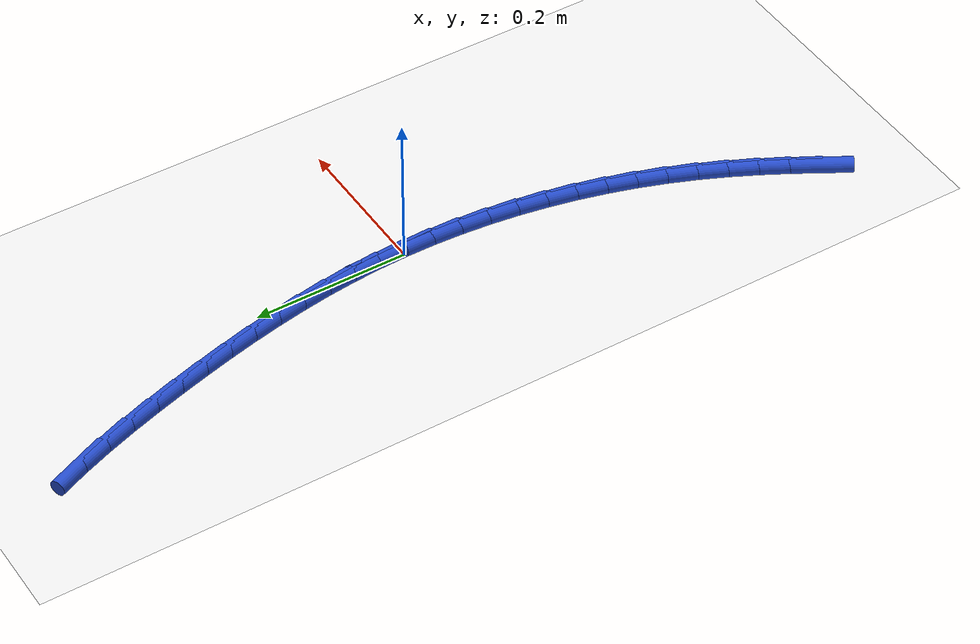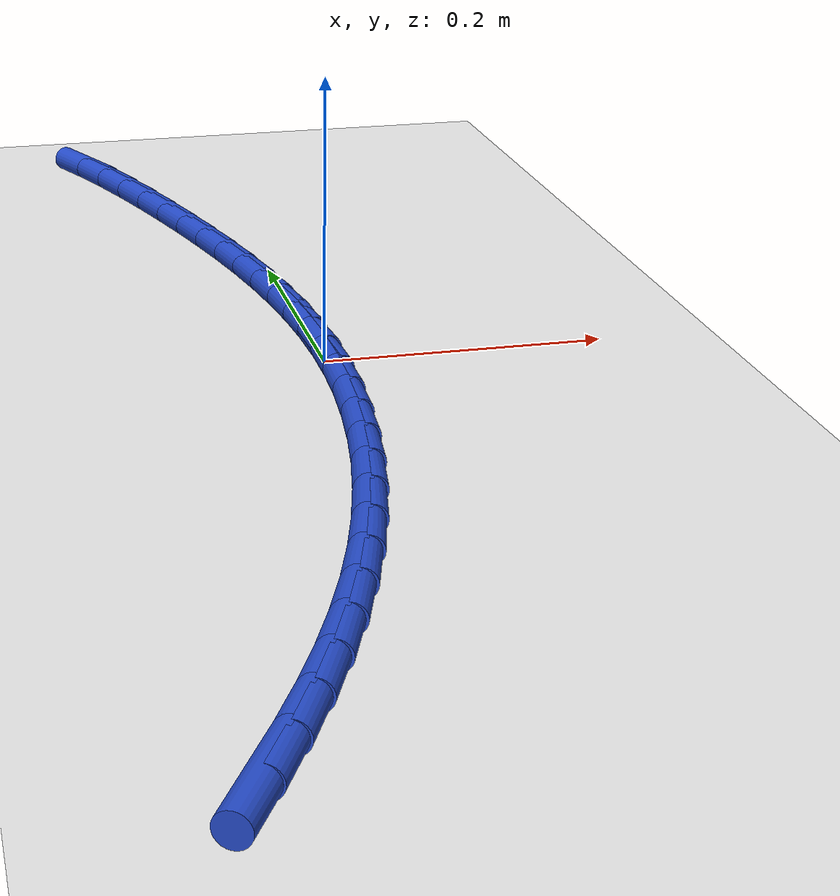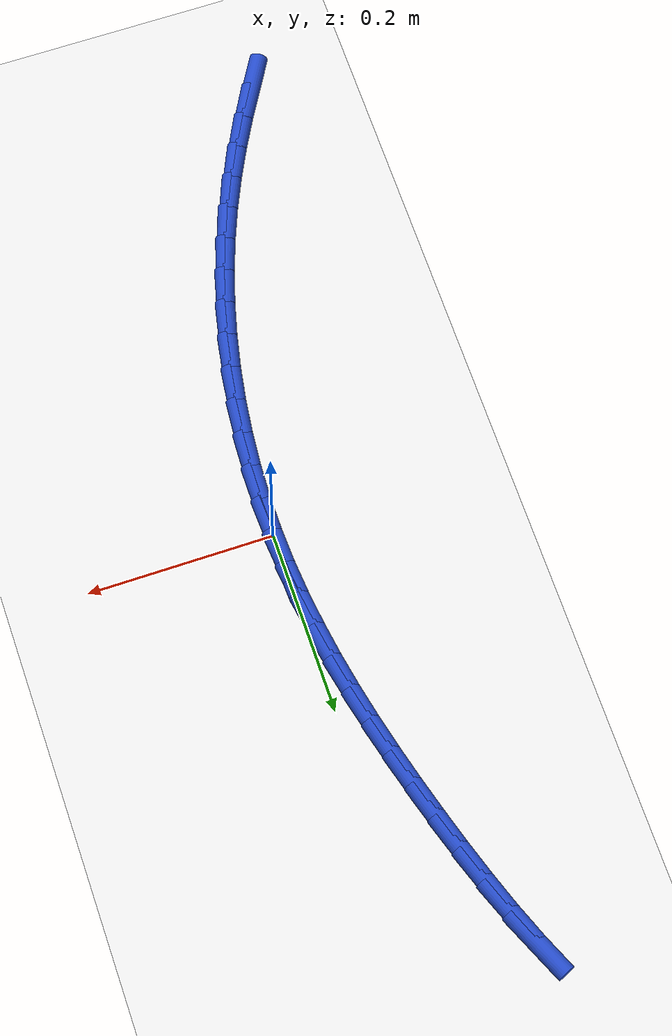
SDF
<sdf version="1.6">
 <world name="default">
  <model name="ground_plane">
   <static>1</static>
   <link name="link">
    <collision name="collision">
     <geometry><plane><normal>0 0 1</normal><size>100 100</size></plane></geometry>
     <surface><friction><ode><mu>100</mu><mu2>50</mu2></ode></friction></surface>
    </collision>
    <visual name="visual">
     <cast_shadows>0</cast_shadows>
     <geometry><plane><normal>0 0 1</normal><size>100 100</size></plane></geometry>
     <material>
      <script><uri>file://media/materials/scripts/gazebo.material</uri><name>Gazebo/WhiteGlow</name></script>
     </material>
    </visual>
   </link>
  </model>
  <model name="line">
   <link name="link_0">
    <pose>-2.0816681711721685e-17 -1.0408340855860843e-16 0.01 0 1.57 -1.5327637463056027</pose>
    <collision name="collision">
     <geometry><cylinder><radius>0.01</radius><length>0.08</length></cylinder></geometry>
    </collision>
    <visual name="visual">
     <material>
      <script><name>Gazebo/Blue</name><uri>file://media/materials/scripts/gazebo.material</uri></script>
     </material>
     <geometry><cylinder><radius>0.01</radius><length>0.08</length></cylinder></geometry>
    </visual>
   </link>
   <link name="link_1">
    <pose>-0.001434148811461781 0.037690244482160684 0.01 0 1.57 -1.4921081020625393</pose>
    <collision name="collision">
     <geometry><cylinder><radius>0.01</radius><length>0.08</length></cylinder></geometry>
    </collision>
    <visual name="visual">
     <material>
      <script><name>Gazebo/Blue</name><uri>file://media/materials/scripts/gazebo.material</uri></script>
     </material>
     <geometry><cylinder><radius>0.01</radius><length>0.08</length></cylinder></geometry>
    </visual>
   </link>
   <link name="link_2">
    <pose>-0.004389834646771935 0.07517467053193923 0.01 0 1.57 -1.4542497640319472</pose>
    <collision name="collision">
     <geometry><cylinder><radius>0.01</radius><length>0.08</length></cylinder></geometry>
    </collision>
    <visual name="visual">
     <material>
      <script><name>Gazebo/Blue</name><uri>file://media/materials/scripts/gazebo.material</uri></script>
     </material>
     <geometry><cylinder><radius>0.01</radius><length>0.08</length></cylinder></geometry>
    </visual>
   </link>
   <link name="link_3">
    <pose>-0.008761367249101027 0.11251358094297098 0.01 0 1.57 -1.4194491700910916</pose>
    <collision name="collision">
     <geometry><cylinder><radius>0.01</radius><length>0.08</length></cylinder></geometry>
    </collision>
    <visual name="visual">
     <material>
      <script><name>Gazebo/Blue</name><uri>file://media/materials/scripts/gazebo.material</uri></script>
     </material>
     <geometry><cylinder><radius>0.01</radius><length>0.08</length></cylinder></geometry>
    </visual>
   </link>
   <link name="link_4">
    <pose>-0.014443056361619648 0.14976727850889157 0.01 0 1.57 -1.3878949564412437</pose>
    <collision name="collision">
     <geometry><cylinder><radius>0.01</radius><length>0.08</length></cylinder></geometry>
    </collision>
    <visual name="visual">
     <material>
      <script><name>Gazebo/Blue</name><uri>file://media/materials/scripts/gazebo.material</uri></script>
     </material>
     <geometry><cylinder><radius>0.01</radius><length>0.08</length></cylinder></geometry>
    </visual>
   </link>
   <link name="link_5">
    <pose>-0.021329211727498333 0.18699606602333635 0.01 0 1.57 -1.3597094110096877</pose>
    <collision name="collision">
     <geometry><cylinder><radius>0.01</radius><length>0.08</length></cylinder></geometry>
    </collision>
    <visual name="visual">
     <material>
      <script><name>Gazebo/Blue</name><uri>file://media/materials/scripts/gazebo.material</uri></script>
     </material>
     <geometry><cylinder><radius>0.01</radius><length>0.08</length></cylinder></geometry>
    </visual>
   </link>
   <link name="link_6">
    <pose>-0.029314143089907645 0.22426024627994096 0.01 0 1.57 -1.3349565964972274</pose>
    <collision name="collision">
     <geometry><cylinder><radius>0.01</radius><length>0.08</length></cylinder></geometry>
    </collision>
    <visual name="visual">
     <material>
      <script><name>Gazebo/Blue</name><uri>file://media/materials/scripts/gazebo.material</uri></script>
     </material>
     <geometry><cylinder><radius>0.01</radius><length>0.08</length></cylinder></geometry>
    </visual>
   </link>
   <link name="link_7">
    <pose>-0.03829216019201816 0.2616201220723408 0.01 0 1.57 -1.3136517567611161</pose>
    <collision name="collision">
     <geometry><cylinder><radius>0.01</radius><length>0.08</length></cylinder></geometry>
    </collision>
    <visual name="visual">
     <material>
      <script><name>Gazebo/Blue</name><uri>file://media/materials/scripts/gazebo.material</uri></script>
     </material>
     <geometry><cylinder><radius>0.01</radius><length>0.08</length></cylinder></geometry>
    </visual>
   </link>
   <link name="link_8">
    <pose>-0.048157572777000425 0.2991359961941715 0.01 0 1.57 -1.2957708750406254</pose>
    <collision name="collision">
     <geometry><cylinder><radius>0.01</radius><length>0.08</length></cylinder></geometry>
    </collision>
    <visual name="visual">
     <material>
      <script><name>Gazebo/Blue</name><uri>file://media/materials/scripts/gazebo.material</uri></script>
     </material>
     <geometry><cylinder><radius>0.01</radius><length>0.08</length></cylinder></geometry>
    </visual>
   </link>
   <link name="link_9">
    <pose>-0.058804690588024996 0.33686817143906855 0.01 0 1.57 -1.2802409625362063</pose>
    <collision name="collision">
     <geometry><cylinder><radius>0.01</radius><length>0.08</length></cylinder></geometry>
    </collision>
    <visual name="visual">
     <material>
      <script><name>Gazebo/Blue</name><uri>file://media/materials/scripts/gazebo.material</uri></script>
     </material>
     <geometry><cylinder><radius>0.01</radius><length>0.08</length></cylinder></geometry>
    </visual>
   </link>
   <link name="link_10">
    <pose>-0.07015812516088733 0.3748372760389036 0.01 0 1.57 -1.2608162352401373</pose>
    <collision name="collision">
     <geometry><cylinder><radius>0.01</radius><length>0.08</length></cylinder></geometry>
    </collision>
    <visual name="visual">
     <material>
      <script><name>Gazebo/Blue</name><uri>file://media/materials/scripts/gazebo.material</uri></script>
     </material>
     <geometry><cylinder><radius>0.01</radius><length>0.08</length></cylinder></geometry>
    </visual>
   </link>
   <link name="link_11">
    <pose>-0.0823255603847175 0.4128242390275658 0.01 0 1.57 -1.2349758218394293</pose>
    <collision name="collision">
     <geometry><cylinder><radius>0.01</radius><length>0.08</length></cylinder></geometry>
    </collision>
    <visual name="visual">
     <material>
      <script><name>Gazebo/Blue</name><uri>file://media/materials/scripts/gazebo.material</uri></script>
     </material>
     <geometry><cylinder><radius>0.01</radius><length>0.08</length></cylinder></geometry>
    </visual>
   </link>
   <link name="link_12">
    <pose>-0.09548308650301904 0.4505204240404468 0.01 0 1.57 -1.2023105526185576</pose>
    <collision name="collision">
     <geometry><cylinder><radius>0.01</radius><length>0.08</length></cylinder></geometry>
    </collision>
    <visual name="visual">
     <material>
      <script><name>Gazebo/Blue</name><uri>file://media/materials/scripts/gazebo.material</uri></script>
     </material>
     <geometry><cylinder><radius>0.01</radius><length>0.08</length></cylinder></geometry>
    </visual>
   </link>
   <link name="link_13">
    <pose>-0.10980691196875302 0.4876170399396394 0.01 0 1.57 -1.1622432033958452</pose>
    <collision name="collision">
     <geometry><cylinder><radius>0.01</radius><length>0.08</length></cylinder></geometry>
    </collision>
    <visual name="visual">
     <material>
      <script><name>Gazebo/Blue</name><uri>file://media/materials/scripts/gazebo.material</uri></script>
     </material>
     <geometry><cylinder><radius>0.01</radius><length>0.08</length></cylinder></geometry>
    </visual>
   </link>
   <link name="link_166">
    <pose>-0.14236975667004462 -0.5067097119955973 0.01 0 1.57 1.0414667872846304</pose>
    <collision name="collision">
     <geometry><cylinder><radius>0.01</radius><length>0.08</length></cylinder></geometry>
    </collision>
    <visual name="visual">
     <material>
      <script><name>Gazebo/Blue</name><uri>file://media/materials/scripts/gazebo.material</uri></script>
     </material>
     <geometry><cylinder><radius>0.01</radius><length>0.08</length></cylinder></geometry>
    </visual>
   </link>
   <link name="link_167">
    <pose>-0.12320293342974674 -0.47394684896045164 0.01 0 1.57 1.0728661937525945</pose>
    <collision name="collision">
     <geometry><cylinder><radius>0.01</radius><length>0.08</length></cylinder></geometry>
    </collision>
    <visual name="visual">
     <material>
      <script><name>Gazebo/Blue</name><uri>file://media/materials/scripts/gazebo.material</uri></script>
     </material>
     <geometry><cylinder><radius>0.01</radius><length>0.08</length></cylinder></geometry>
    </visual>
   </link>
   <link name="link_168">
    <pose>-0.10512192234814217 -0.4406863350265048 0.01 0 1.57 1.1077998860871998</pose>
    <collision name="collision">
     <geometry><cylinder><radius>0.01</radius><length>0.08</length></cylinder></geometry>
    </collision>
    <visual name="visual">
     <material>
      <script><name>Gazebo/Blue</name><uri>file://media/materials/scripts/gazebo.material</uri></script>
     </material>
     <geometry><cylinder><radius>0.01</radius><length>0.08</length></cylinder></geometry>
    </visual>
   </link>
   <link name="link_169">
    <pose>-0.08823387375112081 -0.40685518131366727 0.01 0 1.57 1.1461519741155808</pose>
    <collision name="collision">
     <geometry><cylinder><radius>0.01</radius><length>0.08</length></cylinder></geometry>
    </collision>
    <visual name="visual">
     <material>
      <script><name>Gazebo/Blue</name><uri>file://media/materials/scripts/gazebo.material</uri></script>
     </material>
     <geometry><cylinder><radius>0.01</radius><length>0.08</length></cylinder></geometry>
    </visual>
   </link>
   <link name="link_170">
    <pose>-0.07264593796457224 -0.3723803989418488 0.01 0 1.57 1.1877404197181383</pose>
    <collision name="collision">
     <geometry><cylinder><radius>0.01</radius><length>0.08</length></cylinder></geometry>
    </collision>
    <visual name="visual">
     <material>
      <script><name>Gazebo/Blue</name><uri>file://media/materials/scripts/gazebo.material</uri></script>
     </material>
     <geometry><cylinder><radius>0.01</radius><length>0.08</length></cylinder></geometry>
    </visual>
   </link>
   <link name="link_171">
    <pose>-0.05846522622965106 -0.3371890776387376 0.01 0 1.57 1.2313563890091344</pose>
    <collision name="collision">
     <geometry><cylinder><radius>0.01</radius><length>0.08</length></cylinder></geometry>
    </collision>
    <visual name="visual">
     <material>
      <script><name>Gazebo/Blue</name><uri>file://media/materials/scripts/gazebo.material</uri></script>
     </material>
     <geometry><cylinder><radius>0.01</radius><length>0.08</length></cylinder></geometry>
    </visual>
   </link>
   <link name="link_172">
    <pose>-0.04577623193312856 -0.3012537964821094 0.01 0 1.57 1.2743858075545862</pose>
    <collision name="collision">
     <geometry><cylinder><radius>0.01</radius><length>0.08</length></cylinder></geometry>
    </collision>
    <visual name="visual">
     <material>
      <script><name>Gazebo/Blue</name><uri>file://media/materials/scripts/gazebo.material</uri></script>
     </material>
     <geometry><cylinder><radius>0.01</radius><length>0.08</length></cylinder></geometry>
    </visual>
   </link>
   <link name="link_173">
    <pose>-0.034602917479427 -0.2646688753214706 0.01 0 1.57 1.3166183506581686</pose>
    <collision name="collision">
     <geometry><cylinder><radius>0.01</radius><length>0.08</length></cylinder></geometry>
    </collision>
    <visual name="visual">
     <material>
      <script><name>Gazebo/Blue</name><uri>file://media/materials/scripts/gazebo.material</uri></script>
     </material>
     <geometry><cylinder><radius>0.01</radius><length>0.08</length></cylinder></geometry>
    </visual>
   </link>
   <link name="link_174">
    <pose>-0.024959226298278528 -0.22754878431057482 0.01 0 1.57 1.3582856258047797</pose>
    <collision name="collision">
     <geometry><cylinder><radius>0.01</radius><length>0.08</length></cylinder></geometry>
    </collision>
    <visual name="visual">
     <material>
      <script><name>Gazebo/Blue</name><uri>file://media/materials/scripts/gazebo.material</uri></script>
     </material>
     <geometry><cylinder><radius>0.01</radius><length>0.08</length></cylinder></geometry>
    </visual>
   </link>
   <link name="link_175">
    <pose>-0.016859101819415207 -0.1900079936031755 0.01 0 1.57 1.399618113359827</pose>
    <collision name="collision">
     <geometry><cylinder><radius>0.01</radius><length>0.08</length></cylinder></geometry>
    </collision>
    <visual name="visual">
     <material>
      <script><name>Gazebo/Blue</name><uri>file://media/materials/scripts/gazebo.material</uri></script>
     </material>
     <geometry><cylinder><radius>0.01</radius><length>0.08</length></cylinder></geometry>
    </visual>
   </link>
   <link name="link_176">
    <pose>-0.010316487472569061 -0.15216097335302553 0.01 0 1.57 1.4408461409600717</pose>
    <collision name="collision">
     <geometry><cylinder><radius>0.01</radius><length>0.08</length></cylinder></geometry>
    </collision>
    <visual name="visual">
     <material>
      <script><name>Gazebo/Blue</name><uri>file://media/materials/scripts/gazebo.material</uri></script>
     </material>
     <geometry><cylinder><radius>0.01</radius><length>0.08</length></cylinder></geometry>
    </visual>
   </link>
   <link name="link_177">
    <pose>-0.005345326687472441 -0.11412219371387984 0.01 0 1.57 1.482201126810009</pose>
    <collision name="collision">
     <geometry><cylinder><radius>0.01</radius><length>0.08</length></cylinder></geometry>
    </collision>
    <visual name="visual">
     <material>
      <script><name>Gazebo/Blue</name><uri>file://media/materials/scripts/gazebo.material</uri></script>
     </material>
     <geometry><cylinder><radius>0.01</radius><length>0.08</length></cylinder></geometry>
    </visual>
   </link>
   <link name="link_178">
    <pose>-0.001959562893857323 -0.07600612483949137 0.01 0 1.57 1.5239169504114893</pose>
    <collision name="collision">
     <geometry><cylinder><radius>0.01</radius><length>0.08</length></cylinder></geometry>
    </collision>
    <visual name="visual">
     <material>
      <script><name>Gazebo/Blue</name><uri>file://media/materials/scripts/gazebo.material</uri></script>
     </material>
     <geometry><cylinder><radius>0.01</radius><length>0.08</length></cylinder></geometry>
    </visual>
   </link>
   <link name="link_179">
    <pose>-0.00017313952145580746 -0.037927236883613547 0.01 0 1.57 1.5662313140764397</pose>
    <collision name="collision">
     <geometry><cylinder><radius>0.01</radius><length>0.08</length></cylinder></geometry>
    </collision>
    <visual name="visual">
     <material>
      <script><name>Gazebo/Blue</name><uri>file://media/materials/scripts/gazebo.material</uri></script>
     </material>
     <geometry><cylinder><radius>0.01</radius><length>0.08</length></cylinder></geometry>
    </visual>
   </link>
   <link name="link_180">
    <pose>3.469446951953614e-18 2.7755575615628914e-17 0.01 0 1.57 -1.5322057052606357</pose>
    <collision name="collision">
     <geometry><cylinder><radius>0.01</radius><length>0.08</length></cylinder></geometry>
    </collision>
    <visual name="visual">
     <material>
      <script><name>Gazebo/Blue</name><uri>file://media/materials/scripts/gazebo.material</uri></script>
     </material>
     <geometry><cylinder><radius>0.01</radius><length>0.08</length></cylinder></geometry>
    </visual>
   </link>
   <link name="link_181">
    <pose>-0.0014540877592220131 0.03766111565759584 0.01 0 1.57 -1.5322057052606364</pose>
    <collision name="collision">
     <geometry><cylinder><radius>0.01</radius><length>0.08</length></cylinder></geometry>
    </collision>
    <visual name="visual">
     <material>
      <script><name>Gazebo/Blue</name><uri>file://media/materials/scripts/gazebo.material</uri></script>
     </material>
     <geometry><cylinder><radius>0.01</radius><length>0.08</length></cylinder></geometry>
    </visual>
   </link>
  </model>
 </world>
</sdf>
